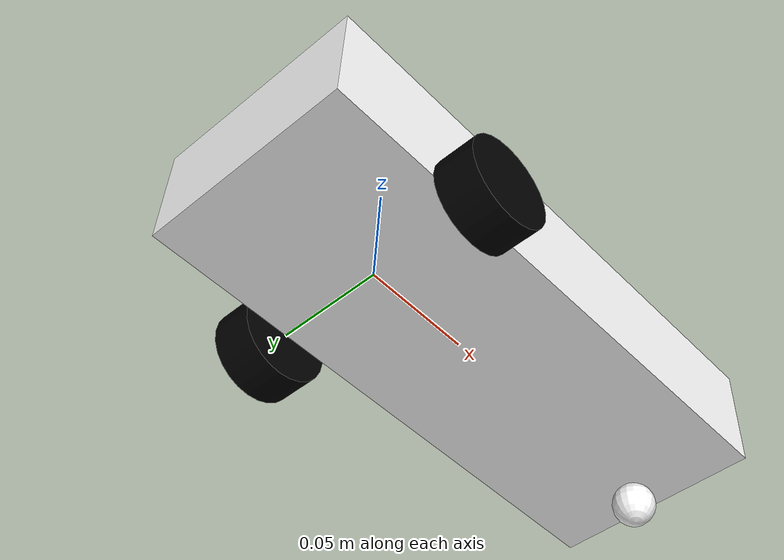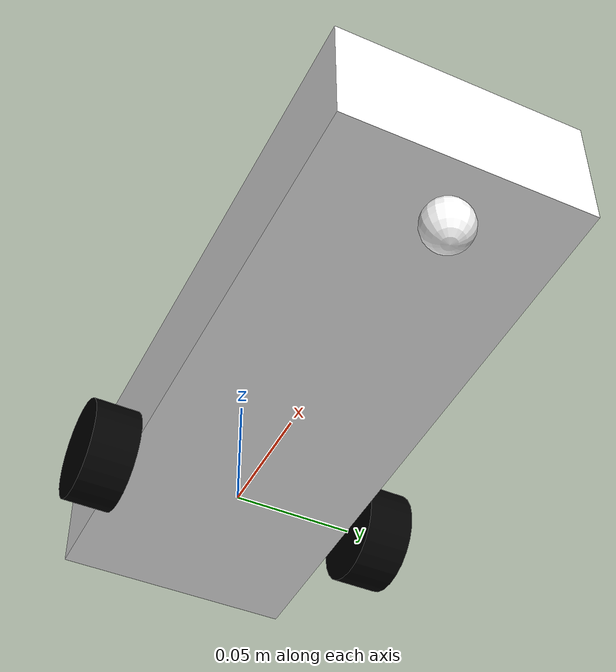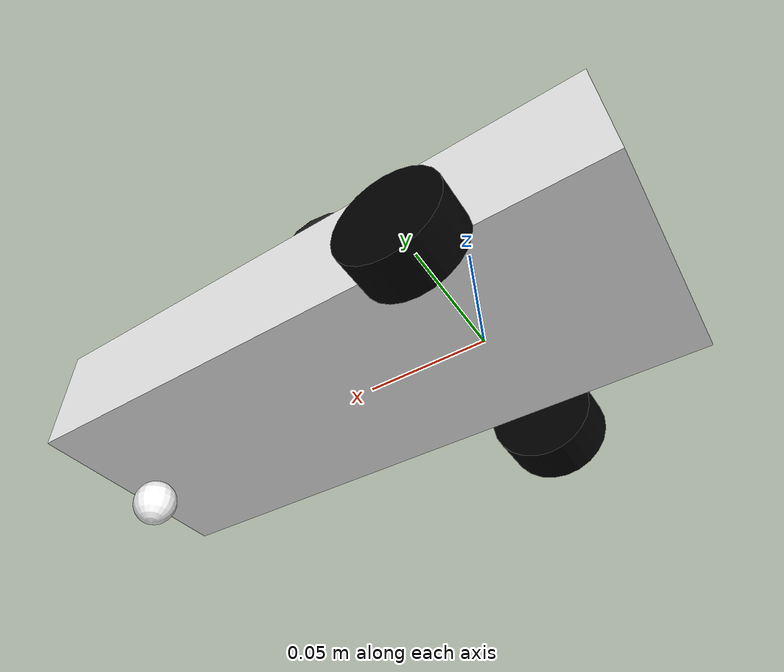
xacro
<?xml version="1.0"?>
<robot xmlns:xacro="http://www.ros.org/wiki/xacro"  name="robot">

    <xacro:include filename="robot_core.xacro" />

    <xacro:include filename="ros2_control.xacro" />
    <xacro:include filename="lidar.xacro" />

</robot>

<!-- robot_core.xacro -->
<robot xmlns:xacro="http://www.ros.org/wiki/xacro" >

    <xacro:include filename="inertial_macros.xacro"/>

    <xacro:property name="chassis_length" value="0.258"/>
    <xacro:property name="chassis_width" value="0.10"/>
    <xacro:property name="chassis_height" value="0.05"/>
    <xacro:property name="chassis_mass" value="1.0"/>
    <xacro:property name="wheel_radius" value="0.021"/>
    <xacro:property name="wheel_thickness" value="0.019"/>
    <xacro:property name="wheel_mass" value="0.03"/>
    <xacro:property name="wheel_offset_x" value="-0.0"/>
    <xacro:property name="wheel_offset_y" value="0.06"/>
    <xacro:property name="wheel_offset_z" value="0.0"/>
    <xacro:property name="caster_wheel_radius" value="0.01"/>
    <xacro:property name="caster_wheel_mass" value="0.01"/>
    <xacro:property name="caster_wheel_offset_x" value="0.24"/>
    <xacro:property name="caster_wheel_offset_z" value="${wheel_offset_z - wheel_radius + caster_wheel_radius}"/>

    <material name="white">
        <color rgba="1 1 1 1" />
    </material>

    <material name="orange">
        <color rgba="1 0.3 0.1 1"/>
    </material>

    <material name="blue">
        <color rgba="0.2 0.2 1 1"/>
    </material>

    <material name="black">
        <color rgba="0 0 0 1"/>
    </material>

    <material name="red">
        <color rgba="1 0 0 1"/>
    </material>

    <!-- BASE LINK -->

    <link name="base_link">

    </link>

    <!-- BASE_FOOTPRINT LINK -->

    <joint name="base_footprint_joint" type="fixed">
        <parent link="base_link"/>
        <child link="base_footprint"/>
        <origin xyz="0 0 0" rpy="0 0 0"/>
    </joint>

    <link name="base_footprint">
    </link>

    <!-- CHASSIS LINK -->

    <joint name="chassis_joint" type="fixed">
        <parent link="base_link"/>
        <child link="chassis"/>
        <origin xyz="-0.07 0 0"/>
    </joint>

    <link name="chassis">
        <visual>
            <origin xyz="${chassis_length/2} 0 ${chassis_height/2}"/>
            <geometry>
                <box size="${chassis_length} ${chassis_width} ${chassis_height}"/>
            </geometry>
            <material name="white"/>
        </visual>
        <collision>
            <origin xyz="${chassis_length/2} 0 ${chassis_height/2}"/>
            <geometry>
                <box size="${chassis_length} ${chassis_width} ${chassis_height}"/>
            </geometry>
        </collision>
        <xacro:inertial_box mass="0.5" x="${chassis_length}" y="${chassis_width}" z="${chassis_height}">
            <origin xyz="${chassis_length/2} 0 ${chassis_height/2}" rpy="0 0 0"/>
        </xacro:inertial_box>
    </link>

    <gazebo reference="chassis">
        <material>Gazebo/White</material>
    </gazebo>

    <!-- LEFT WHEEL LINK -->

    <joint name="left_wheel_joint" type="continuous">
        <parent link="base_link"/>
        <child link="left_wheel"/>
        <origin xyz="0 ${wheel_offset_y} 0" rpy="-${pi/2} 0 0" />
        <axis xyz="0 0 1"/>
    </joint>

    <link name="left_wheel">
        <visual>
            <geometry>
                <cylinder radius="${wheel_radius}" length="${wheel_thickness}"/>
            </geometry>
            <material name="black"/>
        </visual>
        <collision>
            <geometry>
                <cylinder radius="0.021" length="0.001" />
            </geometry>
        </collision>
        <xacro:inertial_cylinder mass="0.1" length="0.02" radius="0.021">
        <origin xyz="0 0 0" rpy="0 0 0"/>
        </xacro:inertial_cylinder>
    </link>

    <gazebo reference="left_wheel">
        <material>Gazebo/BLack</material>
    </gazebo>

    <!-- RIGHT WHEEL LINK -->

    <joint name="right_wheel_joint" type="continuous">
        <parent link="base_link"/>
        <child link="right_wheel"/>
        <origin xyz="0 ${-wheel_offset_y} 0" rpy="${pi/2} 0 0" />
        <axis xyz="0 0 -1"/>
    </joint>

    <link name="right_wheel">
        <visual>
            <geometry>
                <cylinder radius="${wheel_radius}" length="${wheel_thickness}"/>
            </geometry>
            <material name="black"/>
        </visual>
        <collision>
            <geometry>
                <cylinder radius="0.021" length="0.001" />
            </geometry>
        </collision>
        <xacro:inertial_cylinder mass="0.1" length="0.02" radius="0.021">
        <origin xyz="0 0 0" rpy="0 0 0"/>
        </xacro:inertial_cylinder>
    </link>

    <gazebo reference="right_wheel">
        <material>Gazebo/Black</material>
    </gazebo>

    <!-- CASTER WHEEL LINK -->

    <joint name="caster_wheel_joint" type="fixed">
        <parent link="chassis"/>
        <child link="caster_wheel"/>
        <origin xyz="${caster_wheel_offset_x} 0 ${caster_wheel_offset_z}"/>
    </joint>

    <link name="caster_wheel">
        <visual>
            <geometry>
                <sphere radius="${caster_wheel_radius}"/>
            </geometry>
            <material name="white"/>
        </visual>
        <collision>
            <geometry>
                <sphere radius="${caster_wheel_radius}"/>
            </geometry>
        </collision>
        <xacro:inertial_sphere mass="${caster_wheel_mass}" radius="${caster_wheel_radius}">
            <origin xyz="0 0 0" rpy="0 0 0"/>
        </xacro:inertial_sphere>
    </link>

    <gazebo reference="caster_wheel">
        <material>Gazebo/White</material>
        <mu1 value="0.001"/>
        <mu2 value="0.001"/>
    </gazebo>

</robot>

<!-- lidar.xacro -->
<robot xmlns:xacro="http://www.ros.org/wiki/xacro">

    <joint name="laser_joint" type="fixed">
        <parent link="chassis"/>
        <child link="laser_frame"/>
        <origin xyz="0.129 0 0.06" rpy="0 0 0.0"/>
    </joint>

    <link name="laser_frame">
        <visual>
            <geometry>
                <cylinder radius="0.035" length="0.04"/>
            </geometry>
            <material name="Black"/>
        </visual>
        <collision>
            <geometry>
                <cylinder radius="0.035" length="0.04"/>
            </geometry>
        </collision>
        <xacro:inertial_cylinder mass="0.1" length="0.04" radius="0.035">
            <origin xyz="0 0 0" rpy="0 0 0"/>
        </xacro:inertial_cylinder>
    </link>

    <gazebo reference="laser_frame">
        <material>Gazebo/Black</material>
        <sensor name="laser" type="ray">
            <pose> 0 0 0 0 0 0 </pose>
            <visualize>true</visualize>
            <update_rate>10</update_rate>
            <ray>
                <scan>
                    <horizontal>
                        <samples>360</samples>
                        <resolution>1</resolution>
                        <min_angle>-3.14</min_angle>
                        <max_angle>3.14</max_angle>
                    </horizontal>
                </scan>
                <range>
                    <min>0.3</min>
                    <max>12</max>
                    <resolution>0.01</resolution>
                </range>
            </ray>
            <plugin name="laser_controller" filename="libgazebo_ros_ray_sensor.so">
                <ros>
                    <argument>~/out:=scan</argument>
                </ros>
                <output_type>sensor_msgs/LaserScan</output_type>
                <frame_name>laser_frame</frame_name>
            </plugin>
        </sensor>
    </gazebo>

</robot>
